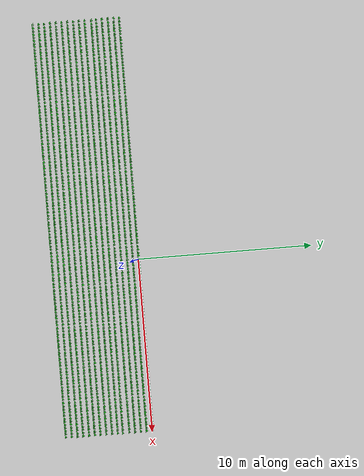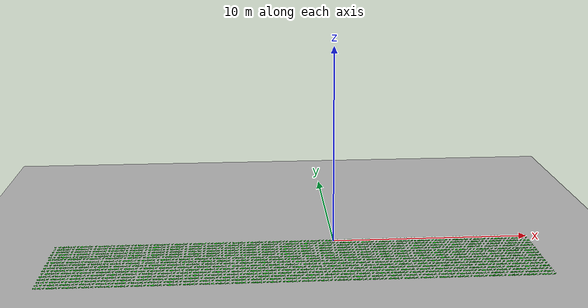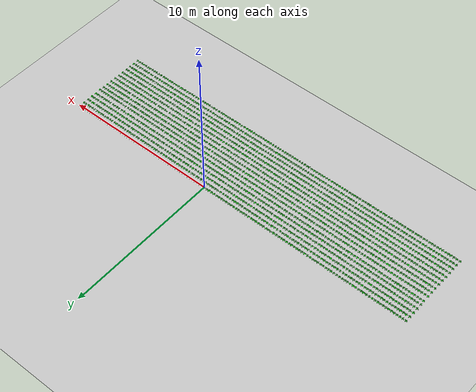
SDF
<sdf version="1.7">
 <world name="default">
  <model name="ground_plane">
   <static>1</static>
   <link name="link">
    <collision name="collision">
     <geometry><plane><normal>0 0 1</normal><size>100 100</size></plane></geometry>
     <surface>
      <contact><collide_bitmask>65535</collide_bitmask></contact>
      <friction><ode><mu>100</mu><mu2>50</mu2></ode></friction>
     </surface>
    </collision>
    <visual name="visual">
     <cast_shadows>0</cast_shadows>
     <geometry><plane><normal>0 0 1</normal><size>100 100</size></plane></geometry>
     <material>
      <script><uri>file://media/materials/scripts/gazebo.material</uri><name>Gazebo/Grey</name></script>
     </material>
    </visual>
   </link>
  </model>
  <model name="one_crop_row">
   <link name="link_0">
    <inertial>
     <mass>9.98</mass>
     <inertia>
      <ixx>0.166667</ixx>
      <ixy>0</ixy>
      <ixz>0</ixz>
      <iyy>0.166667</iyy>
      <iyz>0</iyz>
      <izz>0.166667</izz>
     </inertia>
    </inertial>
    <visual name="visual">
     <geometry><mesh><uri>/home/devesh/one_crop_row.stl</uri><scale>1 1 1</scale></mesh></geometry>
     <material>
      <lighting>1</lighting>
      <script><uri>file://media/materials/scripts/gazebo.material</uri><name>Gazebo/Grey</name></script>
      <shader type="pixel"><normal_map>__default__</normal_map></shader>
      <ambient>0 1 0 0</ambient>
      <diffuse>0 1 0 0</diffuse>
      <specular>0 1 0 0</specular>
      <emissive>0 0 0 1</emissive>
     </material>
    </visual>
    <collision name="collision">
     <geometry><mesh><uri>/home/devesh/one_crop_row.stl</uri><scale>1 1 1</scale></mesh></geometry>
     <surface>
      <friction>
       <ode><mu>1</mu><mu2>1</mu2><fdir1>0 0 0</fdir1><slip1>0</slip1><slip2>0</slip2></ode>
       <torsional>
        <coefficient>1</coefficient>
        <patch_radius>0</patch_radius>
        <surface_radius>0</surface_radius>
        <use_patch_radius>1</use_patch_radius>
        <ode><slip>0</slip></ode>
       </torsional>
      </friction>
      <bounce><restitution_coefficient>0</restitution_coefficient><threshold>1e+06</threshold></bounce>
      <contact>
       <collide_without_contact>0</collide_without_contact>
       <collide_without_contact_bitmask>1</collide_without_contact_bitmask>
       <collide_bitmask>1</collide_bitmask>
       <ode>
        <soft_cfm>0</soft_cfm>
        <soft_erp>0.2</soft_erp>
        <kp>1e+13</kp>
        <kd>1</kd>
        <max_vel>0.01</max_vel>
        <min_depth>0</min_depth>
       </ode>
       <bullet>
        <split_impulse>1</split_impulse>
        <split_impulse_penetration_threshold>-0.01</split_impulse_penetration_threshold>
        <soft_cfm>0</soft_cfm>
        <soft_erp>0.2</soft_erp>
        <kp>1e+13</kp>
        <kd>1</kd>
       </bullet>
      </contact>
     </surface>
    </collision>
   </link>
   <static>0</static>
   <pose>-3.99983 0.000351 0.015873 -0.021911 -0 0.000378</pose>
  </model>
  <model name="one_crop_row_clone">
   <link name="link_0">
    <inertial>
     <mass>9.98</mass>
     <inertia>
      <ixx>0.166667</ixx>
      <ixy>0</ixy>
      <ixz>0</ixz>
      <iyy>0.166667</iyy>
      <iyz>0</iyz>
      <izz>0.166667</izz>
     </inertia>
    </inertial>
    <visual name="visual">
     <geometry><mesh><uri>/home/devesh/one_crop_row.stl</uri><scale>1 1 1</scale></mesh></geometry>
     <material>
      <lighting>1</lighting>
      <script><uri>file://media/materials/scripts/gazebo.material</uri><name>Gazebo/Grey</name></script>
      <shader type="pixel"><normal_map>__default__</normal_map></shader>
      <ambient>0 1 0 0</ambient>
      <diffuse>0 1 0 0</diffuse>
      <specular>0 1 0 0</specular>
      <emissive>0 0 0 1</emissive>
     </material>
    </visual>
    <collision name="collision">
     <geometry><mesh><uri>/home/devesh/one_crop_row.stl</uri><scale>1 1 1</scale></mesh></geometry>
     <surface>
      <friction>
       <ode><mu>1</mu><mu2>1</mu2><fdir1>0 0 0</fdir1><slip1>0</slip1><slip2>0</slip2></ode>
       <torsional>
        <coefficient>1</coefficient>
        <patch_radius>0</patch_radius>
        <surface_radius>0</surface_radius>
        <use_patch_radius>1</use_patch_radius>
        <ode><slip>0</slip></ode>
       </torsional>
      </friction>
      <bounce><restitution_coefficient>0</restitution_coefficient><threshold>1e+06</threshold></bounce>
      <contact>
       <collide_without_contact>0</collide_without_contact>
       <collide_without_contact_bitmask>1</collide_without_contact_bitmask>
       <collide_bitmask>1</collide_bitmask>
       <ode>
        <soft_cfm>0</soft_cfm>
        <soft_erp>0.2</soft_erp>
        <kp>1e+13</kp>
        <kd>1</kd>
        <max_vel>0.01</max_vel>
        <min_depth>0</min_depth>
       </ode>
       <bullet>
        <split_impulse>1</split_impulse>
        <split_impulse_penetration_threshold>-0.01</split_impulse_penetration_threshold>
        <soft_cfm>0</soft_cfm>
        <soft_erp>0.2</soft_erp>
        <kp>1e+13</kp>
        <kd>1</kd>
       </bullet>
      </contact>
     </surface>
    </collision>
   </link>
   <static>0</static>
   <pose>-3.99983 -0.999645 0.015872 -0.022099 -0 0.000191</pose>
  </model>
  <model name="one_crop_row_clone_0">
   <link name="link_0">
    <inertial>
     <mass>9.98</mass>
     <inertia>
      <ixx>0.166667</ixx>
      <ixy>0</ixy>
      <ixz>0</ixz>
      <iyy>0.166667</iyy>
      <iyz>0</iyz>
      <izz>0.166667</izz>
     </inertia>
    </inertial>
    <visual name="visual">
     <geometry><mesh><uri>/home/devesh/one_crop_row.stl</uri><scale>1 1 1</scale></mesh></geometry>
     <material>
      <lighting>1</lighting>
      <script><uri>file://media/materials/scripts/gazebo.material</uri><name>Gazebo/Grey</name></script>
      <shader type="pixel"><normal_map>__default__</normal_map></shader>
      <ambient>0 1 0 0</ambient>
      <diffuse>0 1 0 0</diffuse>
      <specular>0 1 0 0</specular>
      <emissive>0 0 0 1</emissive>
     </material>
    </visual>
    <collision name="collision">
     <geometry><mesh><uri>/home/devesh/one_crop_row.stl</uri><scale>1 1 1</scale></mesh></geometry>
     <surface>
      <friction>
       <ode><mu>1</mu><mu2>1</mu2><fdir1>0 0 0</fdir1><slip1>0</slip1><slip2>0</slip2></ode>
       <torsional>
        <coefficient>1</coefficient>
        <patch_radius>0</patch_radius>
        <surface_radius>0</surface_radius>
        <use_patch_radius>1</use_patch_radius>
        <ode><slip>0</slip></ode>
       </torsional>
      </friction>
      <bounce><restitution_coefficient>0</restitution_coefficient><threshold>1e+06</threshold></bounce>
      <contact>
       <collide_without_contact>0</collide_without_contact>
       <collide_without_contact_bitmask>1</collide_without_contact_bitmask>
       <collide_bitmask>1</collide_bitmask>
       <ode>
        <soft_cfm>0</soft_cfm>
        <soft_erp>0.2</soft_erp>
        <kp>1e+13</kp>
        <kd>1</kd>
        <max_vel>0.01</max_vel>
        <min_depth>0</min_depth>
       </ode>
       <bullet>
        <split_impulse>1</split_impulse>
        <split_impulse_penetration_threshold>-0.01</split_impulse_penetration_threshold>
        <soft_cfm>0</soft_cfm>
        <soft_erp>0.2</soft_erp>
        <kp>1e+13</kp>
        <kd>1</kd>
       </bullet>
      </contact>
     </surface>
    </collision>
   </link>
   <static>0</static>
   <pose>-3.99983 -0.329646 0.015865 -0.022038 3e-06 0.000193</pose>
  </model>
  <model name="one_crop_row_clone_1">
   <link name="link_0">
    <inertial>
     <mass>9.98</mass>
     <inertia>
      <ixx>0.166667</ixx>
      <ixy>0</ixy>
      <ixz>0</ixz>
      <iyy>0.166667</iyy>
      <iyz>0</iyz>
      <izz>0.166667</izz>
     </inertia>
    </inertial>
    <visual name="visual">
     <geometry><mesh><uri>/home/devesh/one_crop_row.stl</uri><scale>1 1 1</scale></mesh></geometry>
     <material>
      <lighting>1</lighting>
      <script><uri>file://media/materials/scripts/gazebo.material</uri><name>Gazebo/Grey</name></script>
      <shader type="pixel"><normal_map>__default__</normal_map></shader>
      <ambient>0 1 0 0</ambient>
      <diffuse>0 1 0 0</diffuse>
      <specular>0 1 0 0</specular>
      <emissive>0 0 0 1</emissive>
     </material>
    </visual>
    <collision name="collision">
     <geometry><mesh><uri>/home/devesh/one_crop_row.stl</uri><scale>1 1 1</scale></mesh></geometry>
     <surface>
      <friction>
       <ode><mu>1</mu><mu2>1</mu2><fdir1>0 0 0</fdir1><slip1>0</slip1><slip2>0</slip2></ode>
       <torsional>
        <coefficient>1</coefficient>
        <patch_radius>0</patch_radius>
        <surface_radius>0</surface_radius>
        <use_patch_radius>1</use_patch_radius>
        <ode><slip>0</slip></ode>
       </torsional>
      </friction>
      <bounce><restitution_coefficient>0</restitution_coefficient><threshold>1e+06</threshold></bounce>
      <contact>
       <collide_without_contact>0</collide_without_contact>
       <collide_without_contact_bitmask>1</collide_without_contact_bitmask>
       <collide_bitmask>1</collide_bitmask>
       <ode>
        <soft_cfm>0</soft_cfm>
        <soft_erp>0.2</soft_erp>
        <kp>1e+13</kp>
        <kd>1</kd>
        <max_vel>0.01</max_vel>
        <min_depth>0</min_depth>
       </ode>
       <bullet>
        <split_impulse>1</split_impulse>
        <split_impulse_penetration_threshold>-0.01</split_impulse_penetration_threshold>
        <soft_cfm>0</soft_cfm>
        <soft_erp>0.2</soft_erp>
        <kp>1e+13</kp>
        <kd>1</kd>
       </bullet>
      </contact>
     </surface>
    </collision>
   </link>
   <static>0</static>
   <pose>-3.99982 -0.659646 0.01587 -0.02203 1e-06 0.000192</pose>
  </model>
  <model name="one_crop_row_clone_2">
   <link name="link_0">
    <inertial>
     <mass>9.98</mass>
     <inertia>
      <ixx>0.166667</ixx>
      <ixy>0</ixy>
      <ixz>0</ixz>
      <iyy>0.166667</iyy>
      <iyz>0</iyz>
      <izz>0.166667</izz>
     </inertia>
    </inertial>
    <visual name="visual">
     <geometry><mesh><uri>/home/devesh/one_crop_row.stl</uri><scale>1 1 1</scale></mesh></geometry>
     <material>
      <lighting>1</lighting>
      <script><uri>file://media/materials/scripts/gazebo.material</uri><name>Gazebo/Grey</name></script>
      <shader type="pixel"><normal_map>__default__</normal_map></shader>
      <ambient>0 1 0 0</ambient>
      <diffuse>0 1 0 0</diffuse>
      <specular>0 1 0 0</specular>
      <emissive>0 0 0 1</emissive>
     </material>
    </visual>
    <collision name="collision">
     <geometry><mesh><uri>/home/devesh/one_crop_row.stl</uri><scale>1 1 1</scale></mesh></geometry>
     <surface>
      <friction>
       <ode><mu>1</mu><mu2>1</mu2><fdir1>0 0 0</fdir1><slip1>0</slip1><slip2>0</slip2></ode>
       <torsional>
        <coefficient>1</coefficient>
        <patch_radius>0</patch_radius>
        <surface_radius>0</surface_radius>
        <use_patch_radius>1</use_patch_radius>
        <ode><slip>0</slip></ode>
       </torsional>
      </friction>
      <bounce><restitution_coefficient>0</restitution_coefficient><threshold>1e+06</threshold></bounce>
      <contact>
       <collide_without_contact>0</collide_without_contact>
       <collide_without_contact_bitmask>1</collide_without_contact_bitmask>
       <collide_bitmask>1</collide_bitmask>
       <ode>
        <soft_cfm>0</soft_cfm>
        <soft_erp>0.2</soft_erp>
        <kp>1e+13</kp>
        <kd>1</kd>
        <max_vel>0.01</max_vel>
        <min_depth>0</min_depth>
       </ode>
       <bullet>
        <split_impulse>1</split_impulse>
        <split_impulse_penetration_threshold>-0.01</split_impulse_penetration_threshold>
        <soft_cfm>0</soft_cfm>
        <soft_erp>0.2</soft_erp>
        <kp>1e+13</kp>
        <kd>1</kd>
       </bullet>
      </contact>
     </surface>
    </collision>
   </link>
   <static>0</static>
   <pose>-3.99983 -1.99967 0.015867 -0.02188 2e-06 0.000137</pose>
  </model>
  <model name="one_crop_row_clone_3">
   <link name="link_0">
    <inertial>
     <mass>9.98</mass>
     <inertia>
      <ixx>0.166667</ixx>
      <ixy>0</ixy>
      <ixz>0</ixz>
      <iyy>0.166667</iyy>
      <iyz>0</iyz>
      <izz>0.166667</izz>
     </inertia>
    </inertial>
    <visual name="visual">
     <geometry><mesh><uri>/home/devesh/one_crop_row.stl</uri><scale>1 1 1</scale></mesh></geometry>
     <material>
      <lighting>1</lighting>
      <script><uri>file://media/materials/scripts/gazebo.material</uri><name>Gazebo/Grey</name></script>
      <shader type="pixel"><normal_map>__default__</normal_map></shader>
      <ambient>0 1 0 0</ambient>
      <diffuse>0 1 0 0</diffuse>
      <specular>0 1 0 0</specular>
      <emissive>0 0 0 1</emissive>
     </material>
    </visual>
    <collision name="collision">
     <geometry><mesh><uri>/home/devesh/one_crop_row.stl</uri><scale>1 1 1</scale></mesh></geometry>
     <surface>
      <friction>
       <ode><mu>1</mu><mu2>1</mu2><fdir1>0 0 0</fdir1><slip1>0</slip1><slip2>0</slip2></ode>
       <torsional>
        <coefficient>1</coefficient>
        <patch_radius>0</patch_radius>
        <surface_radius>0</surface_radius>
        <use_patch_radius>1</use_patch_radius>
        <ode><slip>0</slip></ode>
       </torsional>
      </friction>
      <bounce><restitution_coefficient>0</restitution_coefficient><threshold>1e+06</threshold></bounce>
      <contact>
       <collide_without_contact>0</collide_without_contact>
       <collide_without_contact_bitmask>1</collide_without_contact_bitmask>
       <collide_bitmask>1</collide_bitmask>
       <ode>
        <soft_cfm>0</soft_cfm>
        <soft_erp>0.2</soft_erp>
        <kp>1e+13</kp>
        <kd>1</kd>
        <max_vel>0.01</max_vel>
        <min_depth>0</min_depth>
       </ode>
       <bullet>
        <split_impulse>1</split_impulse>
        <split_impulse_penetration_threshold>-0.01</split_impulse_penetration_threshold>
        <soft_cfm>0</soft_cfm>
        <soft_erp>0.2</soft_erp>
        <kp>1e+13</kp>
        <kd>1</kd>
       </bullet>
      </contact>
     </surface>
    </collision>
   </link>
   <static>0</static>
   <pose>-3.99982 -1.32965 0.015867 -0.022063 8e-06 0.000171</pose>
  </model>
  <model name="one_crop_row_clone_4">
   <link name="link_0">
    <inertial>
     <mass>9.98</mass>
     <inertia>
      <ixx>0.166667</ixx>
      <ixy>0</ixy>
      <ixz>0</ixz>
      <iyy>0.166667</iyy>
      <iyz>0</iyz>
      <izz>0.166667</izz>
     </inertia>
    </inertial>
    <visual name="visual">
     <geometry><mesh><uri>/home/devesh/one_crop_row.stl</uri><scale>1 1 1</scale></mesh></geometry>
     <material>
      <lighting>1</lighting>
      <script><uri>file://media/materials/scripts/gazebo.material</uri><name>Gazebo/Grey</name></script>
      <shader type="pixel"><normal_map>__default__</normal_map></shader>
      <ambient>0 1 0 0</ambient>
      <diffuse>0 1 0 0</diffuse>
      <specular>0 1 0 0</specular>
      <emissive>0 0 0 1</emissive>
     </material>
    </visual>
    <collision name="collision">
     <geometry><mesh><uri>/home/devesh/one_crop_row.stl</uri><scale>1 1 1</scale></mesh></geometry>
     <surface>
      <friction>
       <ode><mu>1</mu><mu2>1</mu2><fdir1>0 0 0</fdir1><slip1>0</slip1><slip2>0</slip2></ode>
       <torsional>
        <coefficient>1</coefficient>
        <patch_radius>0</patch_radius>
        <surface_radius>0</surface_radius>
        <use_patch_radius>1</use_patch_radius>
        <ode><slip>0</slip></ode>
       </torsional>
      </friction>
      <bounce><restitution_coefficient>0</restitution_coefficient><threshold>1e+06</threshold></bounce>
      <contact>
       <collide_without_contact>0</collide_without_contact>
       <collide_without_contact_bitmask>1</collide_without_contact_bitmask>
       <collide_bitmask>1</collide_bitmask>
       <ode>
        <soft_cfm>0</soft_cfm>
        <soft_erp>0.2</soft_erp>
        <kp>1e+13</kp>
        <kd>1</kd>
        <max_vel>0.01</max_vel>
        <min_depth>0</min_depth>
       </ode>
       <bullet>
        <split_impulse>1</split_impulse>
        <split_impulse_penetration_threshold>-0.01</split_impulse_penetration_threshold>
        <soft_cfm>0</soft_cfm>
        <soft_erp>0.2</soft_erp>
        <kp>1e+13</kp>
        <kd>1</kd>
       </bullet>
      </contact>
     </surface>
    </collision>
   </link>
   <static>0</static>
   <pose>-3.97938 -1.65398 0.015864 -0.022063 3e-06 -0.003681</pose>
  </model>
  <model name="one_crop_row_clone_5">
   <link name="link_0">
    <inertial>
     <mass>9.98</mass>
     <inertia>
      <ixx>0.166667</ixx>
      <ixy>0</ixy>
      <ixz>0</ixz>
      <iyy>0.166667</iyy>
      <iyz>0</iyz>
      <izz>0.166667</izz>
     </inertia>
    </inertial>
    <visual name="visual">
     <geometry><mesh><uri>/home/devesh/one_crop_row.stl</uri><scale>1 1 1</scale></mesh></geometry>
     <material>
      <lighting>1</lighting>
      <script><uri>file://media/materials/scripts/gazebo.material</uri><name>Gazebo/Grey</name></script>
      <shader type="pixel"><normal_map>__default__</normal_map></shader>
      <ambient>0 1 0 0</ambient>
      <diffuse>0 1 0 0</diffuse>
      <specular>0 1 0 0</specular>
      <emissive>0 0 0 1</emissive>
     </material>
    </visual>
    <collision name="collision">
     <geometry><mesh><uri>/home/devesh/one_crop_row.stl</uri><scale>1 1 1</scale></mesh></geometry>
     <surface>
      <friction>
       <ode><mu>1</mu><mu2>1</mu2><fdir1>0 0 0</fdir1><slip1>0</slip1><slip2>0</slip2></ode>
       <torsional>
        <coefficient>1</coefficient>
        <patch_radius>0</patch_radius>
        <surface_radius>0</surface_radius>
        <use_patch_radius>1</use_patch_radius>
        <ode><slip>0</slip></ode>
       </torsional>
      </friction>
      <bounce><restitution_coefficient>0</restitution_coefficient><threshold>1e+06</threshold></bounce>
      <contact>
       <collide_without_contact>0</collide_without_contact>
       <collide_without_contact_bitmask>1</collide_without_contact_bitmask>
       <collide_bitmask>1</collide_bitmask>
       <ode>
        <soft_cfm>0</soft_cfm>
        <soft_erp>0.2</soft_erp>
        <kp>1e+13</kp>
        <kd>1</kd>
        <max_vel>0.01</max_vel>
        <min_depth>0</min_depth>
       </ode>
       <bullet>
        <split_impulse>1</split_impulse>
        <split_impulse_penetration_threshold>-0.01</split_impulse_penetration_threshold>
        <soft_cfm>0</soft_cfm>
        <soft_erp>0.2</soft_erp>
        <kp>1e+13</kp>
        <kd>1</kd>
       </bullet>
      </contact>
     </surface>
    </collision>
   </link>
   <static>0</static>
   <pose>-3.99981 -2.99965 0.015872 -0.022099 -0 0.000179</pose>
  </model>
  <model name="one_crop_row_clone_6">
   <link name="link_0">
    <inertial>
     <mass>9.98</mass>
     <inertia>
      <ixx>0.166667</ixx>
      <ixy>0</ixy>
      <ixz>0</ixz>
      <iyy>0.166667</iyy>
      <iyz>0</iyz>
      <izz>0.166667</izz>
     </inertia>
    </inertial>
    <visual name="visual">
     <geometry><mesh><uri>/home/devesh/one_crop_row.stl</uri><scale>1 1 1</scale></mesh></geometry>
     <material>
      <lighting>1</lighting>
      <script><uri>file://media/materials/scripts/gazebo.material</uri><name>Gazebo/Grey</name></script>
      <shader type="pixel"><normal_map>__default__</normal_map></shader>
      <ambient>0 1 0 0</ambient>
      <diffuse>0 1 0 0</diffuse>
      <specular>0 1 0 0</specular>
      <emissive>0 0 0 1</emissive>
     </material>
    </visual>
    <collision name="collision">
     <geometry><mesh><uri>/home/devesh/one_crop_row.stl</uri><scale>1 1 1</scale></mesh></geometry>
     <surface>
      <friction>
       <ode><mu>1</mu><mu2>1</mu2><fdir1>0 0 0</fdir1><slip1>0</slip1><slip2>0</slip2></ode>
       <torsional>
        <coefficient>1</coefficient>
        <patch_radius>0</patch_radius>
        <surface_radius>0</surface_radius>
        <use_patch_radius>1</use_patch_radius>
        <ode><slip>0</slip></ode>
       </torsional>
      </friction>
      <bounce><restitution_coefficient>0</restitution_coefficient><threshold>1e+06</threshold></bounce>
      <contact>
       <collide_without_contact>0</collide_without_contact>
       <collide_without_contact_bitmask>1</collide_without_contact_bitmask>
       <collide_bitmask>1</collide_bitmask>
       <ode>
        <soft_cfm>0</soft_cfm>
        <soft_erp>0.2</soft_erp>
        <kp>1e+13</kp>
        <kd>1</kd>
        <max_vel>0.01</max_vel>
        <min_depth>0</min_depth>
       </ode>
       <bullet>
        <split_impulse>1</split_impulse>
        <split_impulse_penetration_threshold>-0.01</split_impulse_penetration_threshold>
        <soft_cfm>0</soft_cfm>
        <soft_erp>0.2</soft_erp>
        <kp>1e+13</kp>
        <kd>1</kd>
       </bullet>
      </contact>
     </surface>
    </collision>
   </link>
   <static>0</static>
   <pose>-3.99983 -2.32965 0.015872 -0.022091 -0 0.000194</pose>
  </model>
  <model name="one_crop_row_clone_7">
   <link name="link_0">
    <inertial>
     <mass>9.98</mass>
     <inertia>
      <ixx>0.166667</ixx>
      <ixy>0</ixy>
      <ixz>0</ixz>
      <iyy>0.166667</iyy>
      <iyz>0</iyz>
      <izz>0.166667</izz>
     </inertia>
    </inertial>
    <visual name="visual">
     <geometry><mesh><uri>/home/devesh/one_crop_row.stl</uri><scale>1 1 1</scale></mesh></geometry>
     <material>
      <lighting>1</lighting>
      <script><uri>file://media/materials/scripts/gazebo.material</uri><name>Gazebo/Grey</name></script>
      <shader type="pixel"><normal_map>__default__</normal_map></shader>
      <ambient>0 1 0 0</ambient>
      <diffuse>0 1 0 0</diffuse>
      <specular>0 1 0 0</specular>
      <emissive>0 0 0 1</emissive>
     </material>
    </visual>
    <collision name="collision">
     <geometry><mesh><uri>/home/devesh/one_crop_row.stl</uri><scale>1 1 1</scale></mesh></geometry>
     <surface>
      <friction>
       <ode><mu>1</mu><mu2>1</mu2><fdir1>0 0 0</fdir1><slip1>0</slip1><slip2>0</slip2></ode>
       <torsional>
        <coefficient>1</coefficient>
        <patch_radius>0</patch_radius>
        <surface_radius>0</surface_radius>
        <use_patch_radius>1</use_patch_radius>
        <ode><slip>0</slip></ode>
       </torsional>
      </friction>
      <bounce><restitution_coefficient>0</restitution_coefficient><threshold>1e+06</threshold></bounce>
      <contact>
       <collide_without_contact>0</collide_without_contact>
       <collide_without_contact_bitmask>1</collide_without_contact_bitmask>
       <collide_bitmask>1</collide_bitmask>
       <ode>
        <soft_cfm>0</soft_cfm>
        <soft_erp>0.2</soft_erp>
        <kp>1e+13</kp>
        <kd>1</kd>
        <max_vel>0.01</max_vel>
        <min_depth>0</min_depth>
       </ode>
       <bullet>
        <split_impulse>1</split_impulse>
        <split_impulse_penetration_threshold>-0.01</split_impulse_penetration_threshold>
        <soft_cfm>0</soft_cfm>
        <soft_erp>0.2</soft_erp>
        <kp>1e+13</kp>
        <kd>1</kd>
       </bullet>
      </contact>
     </surface>
    </collision>
   </link>
   <static>0</static>
   <pose>-3.99985 -2.65965 0.015872 -0.022066 0 0.000194</pose>
  </model>
  <model name="one_crop_row_clone_8">
   <link name="link_0">
    <inertial>
     <mass>9.98</mass>
     <inertia>
      <ixx>0.166667</ixx>
      <ixy>0</ixy>
      <ixz>0</ixz>
      <iyy>0.166667</iyy>
      <iyz>0</iyz>
      <izz>0.166667</izz>
     </inertia>
    </inertial>
    <visual name="visual">
     <geometry><mesh><uri>/home/devesh/one_crop_row.stl</uri><scale>1 1 1</scale></mesh></geometry>
     <material>
      <lighting>1</lighting>
      <script><uri>file://media/materials/scripts/gazebo.material</uri><name>Gazebo/Grey</name></script>
      <shader type="pixel"><normal_map>__default__</normal_map></shader>
      <ambient>0 1 0 0</ambient>
      <diffuse>0 1 0 0</diffuse>
      <specular>0 1 0 0</specular>
      <emissive>0 0 0 1</emissive>
     </material>
    </visual>
    <collision name="collision">
     <geometry><mesh><uri>/home/devesh/one_crop_row.stl</uri><scale>1 1 1</scale></mesh></geometry>
     <surface>
      <friction>
       <ode><mu>1</mu><mu2>1</mu2><fdir1>0 0 0</fdir1><slip1>0</slip1><slip2>0</slip2></ode>
       <torsional>
        <coefficient>1</coefficient>
        <patch_radius>0</patch_radius>
        <surface_radius>0</surface_radius>
        <use_patch_radius>1</use_patch_radius>
        <ode><slip>0</slip></ode>
       </torsional>
      </friction>
      <bounce><restitution_coefficient>0</restitution_coefficient><threshold>1e+06</threshold></bounce>
      <contact>
       <collide_without_contact>0</collide_without_contact>
       <collide_without_contact_bitmask>1</collide_without_contact_bitmask>
       <collide_bitmask>1</collide_bitmask>
       <ode>
        <soft_cfm>0</soft_cfm>
        <soft_erp>0.2</soft_erp>
        <kp>1e+13</kp>
        <kd>1</kd>
        <max_vel>0.01</max_vel>
        <min_depth>0</min_depth>
       </ode>
       <bullet>
        <split_impulse>1</split_impulse>
        <split_impulse_penetration_threshold>-0.01</split_impulse_penetration_threshold>
        <soft_cfm>0</soft_cfm>
        <soft_erp>0.2</soft_erp>
        <kp>1e+13</kp>
        <kd>1</kd>
       </bullet>
      </contact>
     </surface>
    </collision>
   </link>
   <static>0</static>
   <pose>-3.99984 -3.99965 0.015866 -0.021961 2e-06 0.000196</pose>
  </model>
  <model name="one_crop_row_clone_9">
   <link name="link_0">
    <inertial>
     <mass>9.98</mass>
     <inertia>
      <ixx>0.166667</ixx>
      <ixy>0</ixy>
      <ixz>0</ixz>
      <iyy>0.166667</iyy>
      <iyz>0</iyz>
      <izz>0.166667</izz>
     </inertia>
    </inertial>
    <visual name="visual">
     <geometry><mesh><uri>/home/devesh/one_crop_row.stl</uri><scale>1 1 1</scale></mesh></geometry>
     <material>
      <lighting>1</lighting>
      <script><uri>file://media/materials/scripts/gazebo.material</uri><name>Gazebo/Grey</name></script>
      <shader type="pixel"><normal_map>__default__</normal_map></shader>
      <ambient>0 1 0 0</ambient>
      <diffuse>0 1 0 0</diffuse>
      <specular>0 1 0 0</specular>
      <emissive>0 0 0 1</emissive>
     </material>
    </visual>
    <collision name="collision">
     <geometry><mesh><uri>/home/devesh/one_crop_row.stl</uri><scale>1 1 1</scale></mesh></geometry>
     <surface>
      <friction>
       <ode><mu>1</mu><mu2>1</mu2><fdir1>0 0 0</fdir1><slip1>0</slip1><slip2>0</slip2></ode>
       <torsional>
        <coefficient>1</coefficient>
        <patch_radius>0</patch_radius>
        <surface_radius>0</surface_radius>
        <use_patch_radius>1</use_patch_radius>
        <ode><slip>0</slip></ode>
       </torsional>
      </friction>
      <bounce><restitution_coefficient>0</restitution_coefficient><threshold>1e+06</threshold></bounce>
      <contact>
       <collide_without_contact>0</collide_without_contact>
       <collide_without_contact_bitmask>1</collide_without_contact_bitmask>
       <collide_bitmask>1</collide_bitmask>
       <ode>
        <soft_cfm>0</soft_cfm>
        <soft_erp>0.2</soft_erp>
        <kp>1e+13</kp>
        <kd>1</kd>
        <max_vel>0.01</max_vel>
        <min_depth>0</min_depth>
       </ode>
       <bullet>
        <split_impulse>1</split_impulse>
        <split_impulse_penetration_threshold>-0.01</split_impulse_penetration_threshold>
        <soft_cfm>0</soft_cfm>
        <soft_erp>0.2</soft_erp>
        <kp>1e+13</kp>
        <kd>1</kd>
       </bullet>
      </contact>
     </surface>
    </collision>
   </link>
   <static>0</static>
   <pose>-3.99983 -3.32965 0.015872 -0.022056 -0 0.000194</pose>
  </model>
  <model name="one_crop_row_clone_10">
   <link name="link_0">
    <inertial>
     <mass>9.98</mass>
     <inertia>
      <ixx>0.166667</ixx>
      <ixy>0</ixy>
      <ixz>0</ixz>
      <iyy>0.166667</iyy>
      <iyz>0</iyz>
      <izz>0.166667</izz>
     </inertia>
    </inertial>
    <visual name="visual">
     <geometry><mesh><uri>/home/devesh/one_crop_row.stl</uri><scale>1 1 1</scale></mesh></geometry>
     <material>
      <lighting>1</lighting>
      <script><uri>file://media/materials/scripts/gazebo.material</uri><name>Gazebo/Grey</name></script>
      <shader type="pixel"><normal_map>__default__</normal_map></shader>
      <ambient>0 1 0 0</ambient>
      <diffuse>0 1 0 0</diffuse>
      <specular>0 1 0 0</specular>
      <emissive>0 0 0 1</emissive>
     </material>
    </visual>
    <collision name="collision">
     <geometry><mesh><uri>/home/devesh/one_crop_row.stl</uri><scale>1 1 1</scale></mesh></geometry>
     <surface>
      <friction>
       <ode><mu>1</mu><mu2>1</mu2><fdir1>0 0 0</fdir1><slip1>0</slip1><slip2>0</slip2></ode>
       <torsional>
        <coefficient>1</coefficient>
        <patch_radius>0</patch_radius>
        <surface_radius>0</surface_radius>
        <use_patch_radius>1</use_patch_radius>
        <ode><slip>0</slip></ode>
       </torsional>
      </friction>
      <bounce><restitution_coefficient>0</restitution_coefficient><threshold>1e+06</threshold></bounce>
      <contact>
       <collide_without_contact>0</collide_without_contact>
       <collide_without_contact_bitmask>1</collide_without_contact_bitmask>
       <collide_bitmask>1</collide_bitmask>
       <ode>
        <soft_cfm>0</soft_cfm>
        <soft_erp>0.2</soft_erp>
        <kp>1e+13</kp>
        <kd>1</kd>
        <max_vel>0.01</max_vel>
        <min_depth>0</min_depth>
       </ode>
       <bullet>
        <split_impulse>1</split_impulse>
        <split_impulse_penetration_threshold>-0.01</split_impulse_penetration_threshold>
        <soft_cfm>0</soft_cfm>
        <soft_erp>0.2</soft_erp>
        <kp>1e+13</kp>
        <kd>1</kd>
       </bullet>
      </contact>
     </surface>
    </collision>
   </link>
   <static>0</static>
   <pose>-3.99983 -3.65965 0.015872 -0.022099 -0 0.000194</pose>
  </model>
  <model name="one_crop_row_clone_11">
   <link name="link_0">
    <inertial>
     <mass>9.98</mass>
     <inertia>
      <ixx>0.166667</ixx>
      <ixy>0</ixy>
      <ixz>0</ixz>
      <iyy>0.166667</iyy>
      <iyz>0</iyz>
      <izz>0.166667</izz>
     </inertia>
    </inertial>
    <visual name="visual">
     <geometry><mesh><uri>/home/devesh/one_crop_row.stl</uri><scale>1 1 1</scale></mesh></geometry>
     <material>
      <lighting>1</lighting>
      <script><uri>file://media/materials/scripts/gazebo.material</uri><name>Gazebo/Grey</name></script>
      <shader type="pixel"><normal_map>__default__</normal_map></shader>
      <ambient>0 1 0 0</ambient>
      <diffuse>0 1 0 0</diffuse>
      <specular>0 1 0 0</specular>
      <emissive>0 0 0 1</emissive>
     </material>
    </visual>
    <collision name="collision">
     <geometry><mesh><uri>/home/devesh/one_crop_row.stl</uri><scale>1 1 1</scale></mesh></geometry>
     <surface>
      <friction>
       <ode><mu>1</mu><mu2>1</mu2><fdir1>0 0 0</fdir1><slip1>0</slip1><slip2>0</slip2></ode>
       <torsional>
        <coefficient>1</coefficient>
        <patch_radius>0</patch_radius>
        <surface_radius>0</surface_radius>
        <use_patch_radius>1</use_patch_radius>
        <ode><slip>0</slip></ode>
       </torsional>
      </friction>
      <bounce><restitution_coefficient>0</restitution_coefficient><threshold>1e+06</threshold></bounce>
      <contact>
       <collide_without_contact>0</collide_without_contact>
       <collide_without_contact_bitmask>1</collide_without_contact_bitmask>
       <collide_bitmask>1</collide_bitmask>
       <ode>
        <soft_cfm>0</soft_cfm>
        <soft_erp>0.2</soft_erp>
        <kp>1e+13</kp>
        <kd>1</kd>
        <max_vel>0.01</max_vel>
        <min_depth>0</min_depth>
       </ode>
       <bullet>
        <split_impulse>1</split_impulse>
        <split_impulse_penetration_threshold>-0.01</split_impulse_penetration_threshold>
        <soft_cfm>0</soft_cfm>
        <soft_erp>0.2</soft_erp>
        <kp>1e+13</kp>
        <kd>1</kd>
       </bullet>
      </contact>
     </surface>
    </collision>
   </link>
   <static>0</static>
   <pose>-3.99982 -4.99965 0.015865 -0.022106 9e-06 0.000194</pose>
  </model>
  <model name="one_crop_row_clone_12">
   <link name="link_0">
    <inertial>
     <mass>9.98</mass>
     <inertia>
      <ixx>0.166667</ixx>
      <ixy>0</ixy>
      <ixz>0</ixz>
      <iyy>0.166667</iyy>
      <iyz>0</iyz>
      <izz>0.166667</izz>
     </inertia>
    </inertial>
    <visual name="visual">
     <geometry><mesh><uri>/home/devesh/one_crop_row.stl</uri><scale>1 1 1</scale></mesh></geometry>
     <material>
      <lighting>1</lighting>
      <script><uri>file://media/materials/scripts/gazebo.material</uri><name>Gazebo/Grey</name></script>
      <shader type="pixel"><normal_map>__default__</normal_map></shader>
      <ambient>0 1 0 0</ambient>
      <diffuse>0 1 0 0</diffuse>
      <specular>0 1 0 0</specular>
      <emissive>0 0 0 1</emissive>
     </material>
    </visual>
    <collision name="collision">
     <geometry><mesh><uri>/home/devesh/one_crop_row.stl</uri><scale>1 1 1</scale></mesh></geometry>
     <surface>
      <friction>
       <ode><mu>1</mu><mu2>1</mu2><fdir1>0 0 0</fdir1><slip1>0</slip1><slip2>0</slip2></ode>
       <torsional>
        <coefficient>1</coefficient>
        <patch_radius>0</patch_radius>
        <surface_radius>0</surface_radius>
        <use_patch_radius>1</use_patch_radius>
        <ode><slip>0</slip></ode>
       </torsional>
      </friction>
      <bounce><restitution_coefficient>0</restitution_coefficient><threshold>1e+06</threshold></bounce>
      <contact>
       <collide_without_contact>0</collide_without_contact>
       <collide_without_contact_bitmask>1</collide_without_contact_bitmask>
       <collide_bitmask>1</collide_bitmask>
       <ode>
        <soft_cfm>0</soft_cfm>
        <soft_erp>0.2</soft_erp>
        <kp>1e+13</kp>
        <kd>1</kd>
        <max_vel>0.01</max_vel>
        <min_depth>0</min_depth>
       </ode>
       <bullet>
        <split_impulse>1</split_impulse>
        <split_impulse_penetration_threshold>-0.01</split_impulse_penetration_threshold>
        <soft_cfm>0</soft_cfm>
        <soft_erp>0.2</soft_erp>
        <kp>1e+13</kp>
        <kd>1</kd>
       </bullet>
      </contact>
     </surface>
    </collision>
   </link>
   <static>0</static>
   <pose>-3.98527 -4.33129 0.015872 -0.022031 0 0.00081</pose>
  </model>
  <model name="one_crop_row_clone_13">
   <link name="link_0">
    <inertial>
     <mass>9.98</mass>
     <inertia>
      <ixx>0.166667</ixx>
      <ixy>0</ixy>
      <ixz>0</ixz>
      <iyy>0.166667</iyy>
      <iyz>0</iyz>
      <izz>0.166667</izz>
     </inertia>
    </inertial>
    <visual name="visual">
     <geometry><mesh><uri>/home/devesh/one_crop_row.stl</uri><scale>1 1 1</scale></mesh></geometry>
     <material>
      <lighting>1</lighting>
      <script><uri>file://media/materials/scripts/gazebo.material</uri><name>Gazebo/Grey</name></script>
      <shader type="pixel"><normal_map>__default__</normal_map></shader>
      <ambient>0 1 0 0</ambient>
      <diffuse>0 1 0 0</diffuse>
      <specular>0 1 0 0</specular>
      <emissive>0 0 0 1</emissive>
     </material>
    </visual>
    <collision name="collision">
     <geometry><mesh><uri>/home/devesh/one_crop_row.stl</uri><scale>1 1 1</scale></mesh></geometry>
     <surface>
      <friction>
       <ode><mu>1</mu><mu2>1</mu2><fdir1>0 0 0</fdir1><slip1>0</slip1><slip2>0</slip2></ode>
       <torsional>
        <coefficient>1</coefficient>
        <patch_radius>0</patch_radius>
        <surface_radius>0</surface_radius>
        <use_patch_radius>1</use_patch_radius>
        <ode><slip>0</slip></ode>
       </torsional>
      </friction>
      <bounce><restitution_coefficient>0</restitution_coefficient><threshold>1e+06</threshold></bounce>
      <contact>
       <collide_without_contact>0</collide_without_contact>
       <collide_without_contact_bitmask>1</collide_without_contact_bitmask>
       <collide_bitmask>1</collide_bitmask>
       <ode>
        <soft_cfm>0</soft_cfm>
        <soft_erp>0.2</soft_erp>
        <kp>1e+13</kp>
        <kd>1</kd>
        <max_vel>0.01</max_vel>
        <min_depth>0</min_depth>
       </ode>
       <bullet>
        <split_impulse>1</split_impulse>
        <split_impulse_penetration_threshold>-0.01</split_impulse_penetration_threshold>
        <soft_cfm>0</soft_cfm>
        <soft_erp>0.2</soft_erp>
        <kp>1e+13</kp>
        <kd>1</kd>
       </bullet>
      </contact>
     </surface>
    </collision>
   </link>
   <static>0</static>
   <pose>-3.99983 -4.65971 0.015873 -0.021999 -0 0.000128</pose>
  </model>
 </world>
</sdf>
